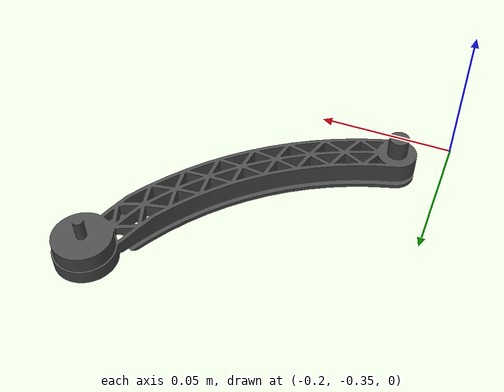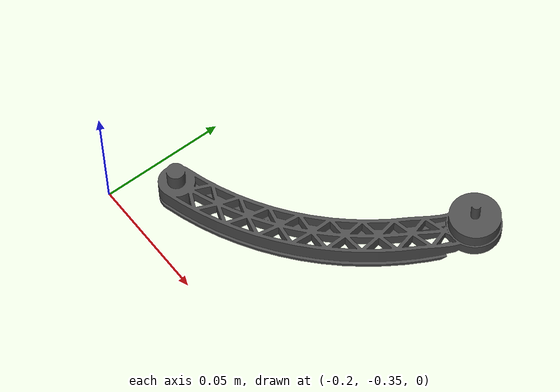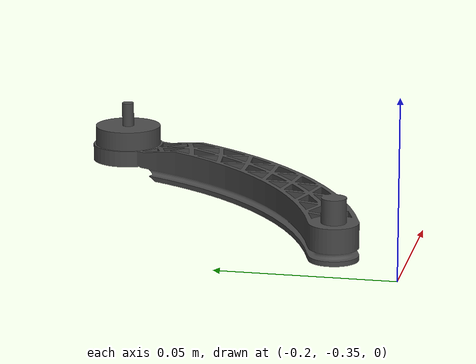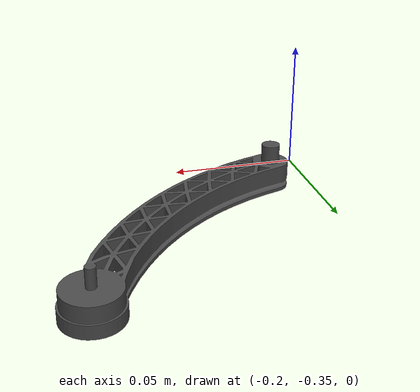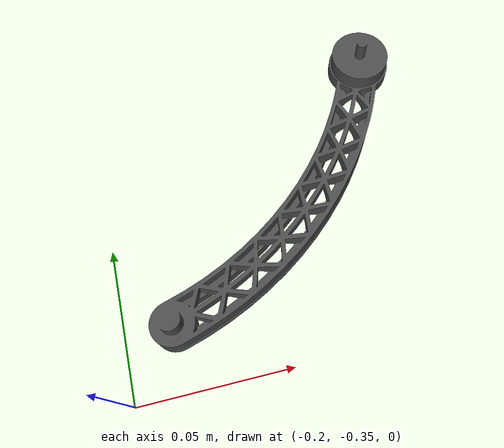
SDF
<sdf version='1.5'>
  <model name='modular_arm'>
    <link name='base_link'>
      <pose frame=''>0 0 0 0 -0 0</pose>
      <inertial>
        <pose frame=''>0 0 0 0 -0 0</pose>
        <mass>1.5</mass>
        <inertia>
          <ixx>0.029125</ixx>
          <ixy>0</ixy>
          <ixz>0</ixz>
          <iyy>0.029125</iyy>
          <iyz>0</iyz>
          <izz>0.055225</izz>
        </inertia>
      </inertial>
      <collision name='base_link_inertia_collision'>
        <pose frame=''>0 0 0.0805 0 -0 0</pose>
        <geometry>
          <box>
            <size>0.224 0.224 0.161</size>
          </box>
        </geometry>
        <surface>
          <contact>
            <ode>
              <min_depth>0.001</min_depth>
              <max_vel>0</max_vel>
            </ode>
          </contact>
          <friction>
            <ode/>
          </friction>
        </surface>
      </collision>
      <visual name='base_link_inertia_visual'>
        <pose frame=''>-0.19092 -0.19092 0 1.570796 -0 0</pose>
        <geometry>
          <mesh>
            <scale>0.001 0.001 0.001</scale>
            <uri>model://modular_description/meshes/Arm+motor.STL</uri>
          </mesh>
        </geometry>
        <material>
          <script>
            <name>Gazebo/DarkGrey</name>
            <uri>file://media/materials/scripts/gazebo.material</uri>
          </script>
        </material>
      </visual>
      <kinematic>1</kinematic>
      <velocity_decay/>
    </link>
  </model>
</sdf>
